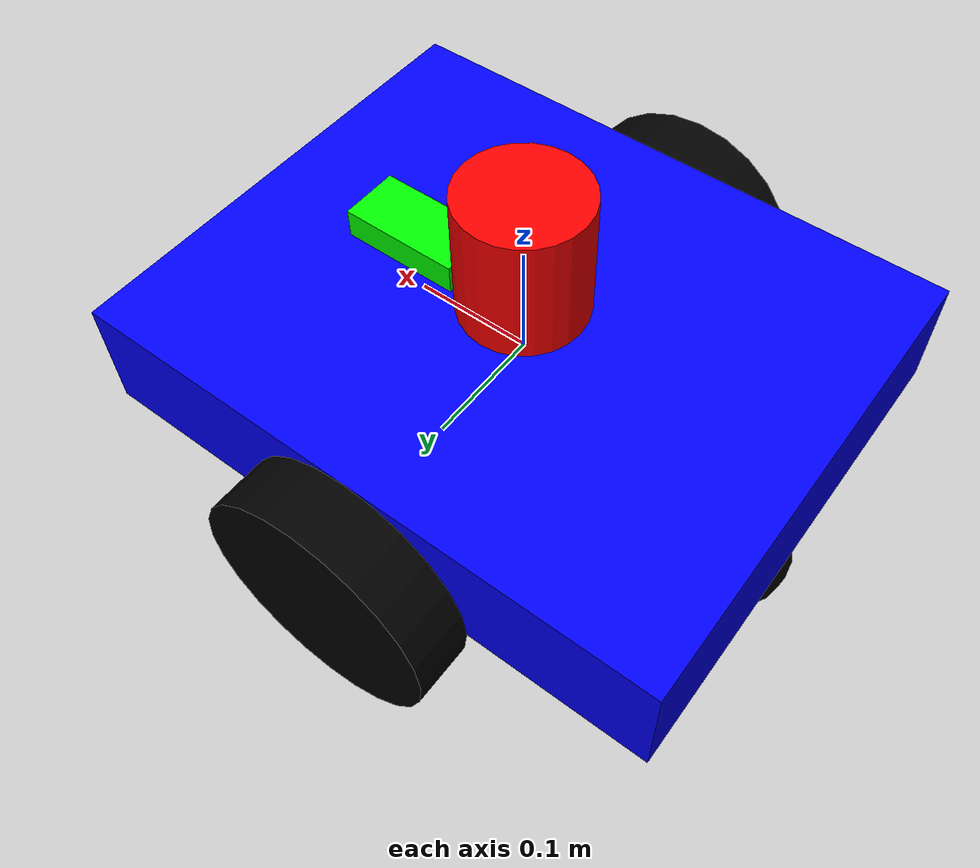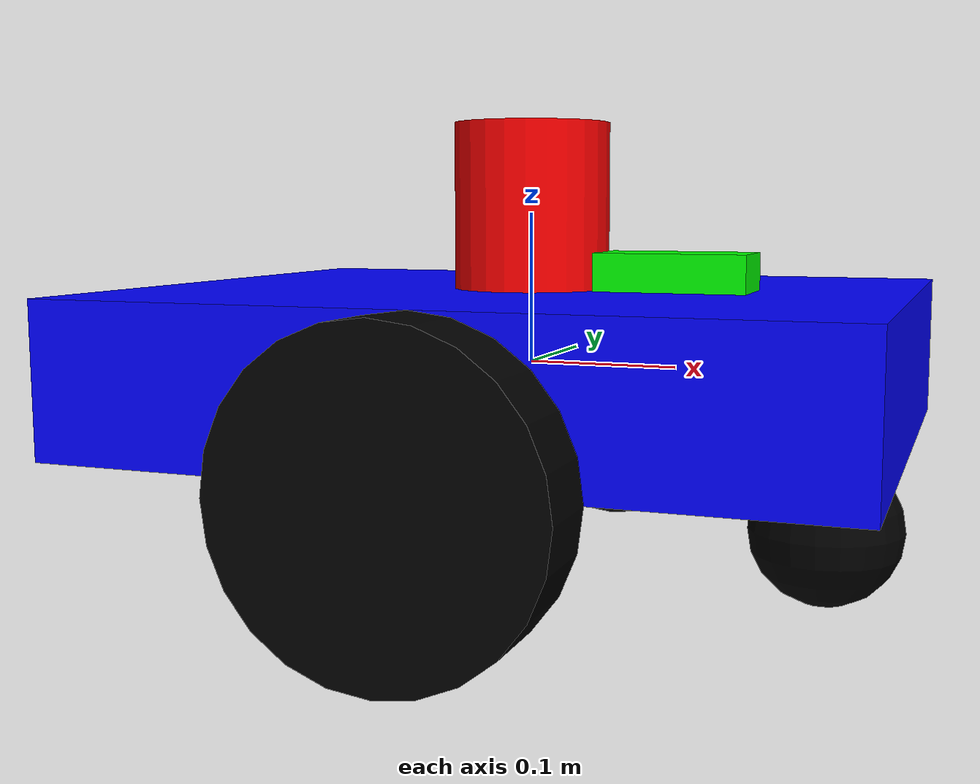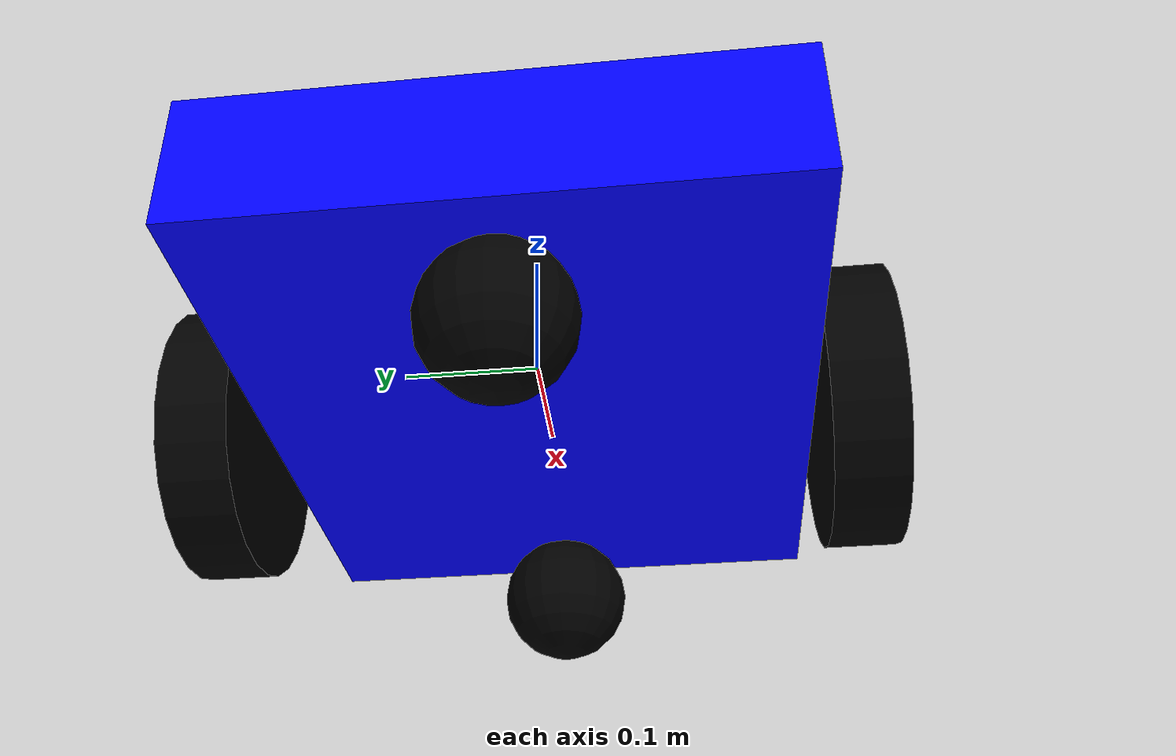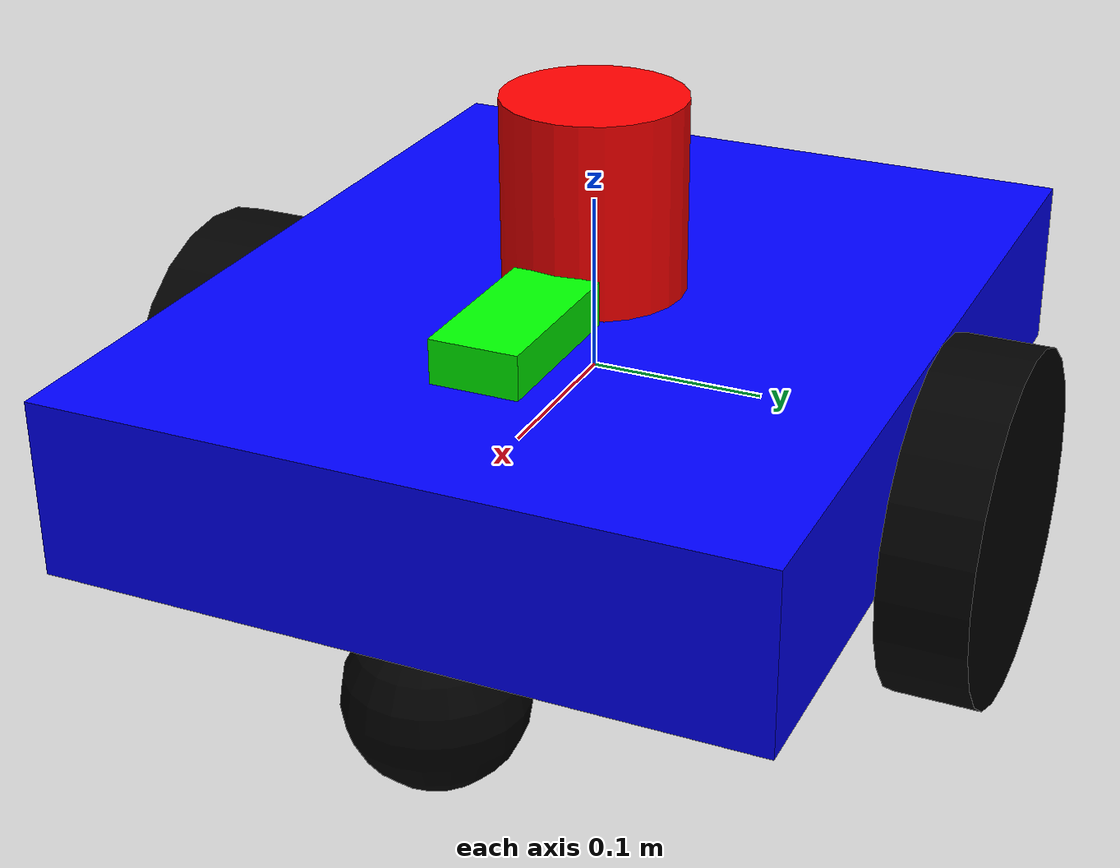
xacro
<?xml version="1.0"?>
<robot name="simple_robot" xmlns:xacro="http://www.ros.org/wiki/xacro">

  <!-- ================= PARAMETERS ================= -->
  <xacro:property name="wheel_radius" value="0.1"/>
  <xacro:property name="wheel_width" value="0.05"/>
  <xacro:property name="wheel_offset_y" value="0.225"/>

  <!-- ================= MATERIALS ================= -->
  <material name="blue">
    <color rgba="0 0 1 1"/>
  </material>

  <material name="black">
    <color rgba="0 0 0 1"/>
  </material>

  <material name="red">
    <color rgba="1 0 0 1"/>
  </material>

  <material name="green">
    <color rgba="0 1 0 1"/>
  </material>

  <!-- ================= BASE LINK ================= -->
  <link name="base_link">
    <visual>
      <geometry>
        <box size="0.5 0.4 0.1"/>
      </geometry>
      <material name="blue"/>
    </visual>

    <collision>
      <geometry>
        <box size="0.5 0.4 0.1"/>
      </geometry>
    </collision>

    <inertial>
      <mass value="5.0"/>
      <inertia ixx="0.5" iyy="0.5" izz="0.5"
              ixy="0.0" ixz="0.0" iyz="0.0"/>
    </inertial>
  </link>

  <gazebo reference="base_link">
    <material>Gazebo/Blue</material>
  </gazebo>

  <!-- ================= WHEEL MACRO ================= -->
  <xacro:macro name="wheel" params="name y_offset">

    <link name="${name}">
      <visual>
        <origin xyz="0 0 0" rpy="1.5708 0 0"/>
        <geometry>
          <cylinder radius="${wheel_radius}" length="${wheel_width}"/>
        </geometry>
        <material name="black"/>
      </visual>

      <collision>
        <origin xyz="0 0 0" rpy="1.5708 0 0"/>
        <geometry>
          <cylinder radius="${wheel_radius}" length="${wheel_width}"/>
        </geometry>
      </collision>

      <inertial>
        <mass value="1.0"/>
        <inertia ixx="0.1" iyy="0.1" izz="0.1"
                ixy="0.0" ixz="0.0" iyz="0.0"/>
      </inertial>
    </link>

    <joint name="${name}_joint" type="continuous">
      <parent link="base_link"/>
      <child link="${name}"/>
      <origin xyz="0 ${y_offset} -0.05"/>
      <axis xyz="0 1 0"/>
    </joint>

    <gazebo reference="${name}">
      <material>Gazebo/Black</material>
      <mu1>1.5</mu1>
      <mu2>1.5</mu2>
      <kp>1000000</kp>
      <kd>100</kd>
    </gazebo>

  </xacro:macro>

  <!-- ================= CREATE WHEELS ================= -->
  <xacro:wheel name="left_wheel" y_offset="${wheel_offset_y}"/>
  <xacro:wheel name="right_wheel" y_offset="-${wheel_offset_y}"/>

  <!-- ================= FRONT CASTER ================= -->
  <link name="front_caster">
    <visual>
      <geometry>
        <sphere radius="0.05"/>
      </geometry>
      <material name="black"/>
    </visual>
    <collision>
      <geometry>
        <sphere radius="0.05"/>
      </geometry>
    </collision>
    <inertial>
      <mass value="0.5"/>
      <inertia ixx="0.001" iyy="0.001" izz="0.001"
              ixy="0.0" ixz="0.0" iyz="0.0"/>
    </inertial>
  </link>

  <joint name="front_caster_joint" type="fixed">
    <parent link="base_link"/>
    <child link="front_caster"/>
    <origin xyz="0.2 0 -0.1"/>
  </joint>

  <gazebo reference="front_caster">
    <material>Gazebo/Black</material>
    <mu1>0.001</mu1>
    <mu2>0.001</mu2>
  </gazebo>

  <!-- ================= REAR CASTER ================= -->
  <link name="rear_caster">
    <visual>
      <geometry>
        <sphere radius="0.05"/>
      </geometry>
      <material name="black"/>
    </visual>
    <collision>
      <geometry>
        <sphere radius="0.05"/>
      </geometry>
    </collision>
    <inertial>
      <mass value="0.5"/>
      <inertia ixx="0.001" iyy="0.001" izz="0.001"
              ixy="0.0" ixz="0.0" iyz="0.0"/>
    </inertial>
  </link>

  <joint name="rear_caster_joint" type="fixed">
    <parent link="base_link"/>
    <child link="rear_caster"/>
    <origin xyz="-0.2 0 -0.1"/>
  </joint>

  <gazebo reference="rear_caster">
    <material>Gazebo/Black</material>
    <mu1>0.001</mu1>
    <mu2>0.001</mu2>
  </gazebo>

  <!-- ================= LIDAR ================= -->
  <link name="lidar_link">
    <visual>
      <geometry>
        <cylinder length="0.1" radius="0.05"/>
      </geometry>
      <material name="red"/>
    </visual>

    <collision>
      <geometry>
        <cylinder length="0.1" radius="0.05"/>
      </geometry>
    </collision>

    <inertial>
      <mass value="0.5"/>
      <inertia ixx="0.01" iyy="0.01" izz="0.01"
              ixy="0.0" ixz="0.0" iyz="0.0"/>
    </inertial>
  </link>

  <link name="lidar_spinner_link">
    <visual>
      <geometry>
        <cylinder length="0.12" radius="0.052"/>
      </geometry>
      <material name="red"/>
    </visual>

    <inertial>
      <mass value="0.05"/>
      <inertia ixx="0.0001" iyy="0.0001" izz="0.0001"
              ixy="0.0" ixz="0.0" iyz="0.0"/>
    </inertial>
  </link>

  <joint name="lidar_joint" type="fixed">
    <parent link="base_link"/>
    <child link="lidar_link"/>
    <origin xyz="0 0 0.10"/>
  </joint>

  <joint name="lidar_spinner_joint" type="continuous">
    <parent link="lidar_link"/>
    <child link="lidar_spinner_link"/>
    <origin xyz="0 0 0"/>
    <axis xyz="0 0 1"/>
  </joint>

  <gazebo reference="lidar_link">
    <material>Gazebo/Red</material>

    <sensor name="lidar_sensor" type="gpu_lidar">
      <always_on>true</always_on>
      <visualize>true</visualize>
      <update_rate>10</update_rate>
      <topic>scan</topic>
      <lidar>
        <scan>
          <horizontal>
            <samples>720</samples>
            <resolution>1</resolution>
            <min_angle>-3.14159</min_angle>
            <max_angle>3.14159</max_angle>
          </horizontal>
        </scan>
        <range>
          <min>0.1</min>
          <max>10.0</max>
          <resolution>0.01</resolution>
        </range>
      </lidar>
    </sensor>
  </gazebo>

  <gazebo reference="lidar_spinner_link">
    <material>Gazebo/Red</material>
  </gazebo>

  <gazebo>
    <plugin
      filename="gz-sim-joint-controller-system"
      name="gz::sim::systems::JointController">
      <joint_name>lidar_spinner_joint</joint_name>
      <initial_velocity>3.0</initial_velocity>
    </plugin>
  </gazebo>

  <!-- ================= DIFFERENTIAL DRIVE ================= -->
  <gazebo>
    <plugin
      filename="gz-sim-diff-drive-system"
      name="gz::sim::systems::DiffDrive">
      <left_joint>left_wheel_joint</left_joint>
      <right_joint>right_wheel_joint</right_joint>
      <wheel_separation>${2 * wheel_offset_y}</wheel_separation>
      <wheel_radius>${wheel_radius}</wheel_radius>
      <odom_topic>/odom</odom_topic>
      <topic>/cmd_vel</topic>
      <tf_topic>/tf</tf_topic>
      <frame_id>odom</frame_id>
      <child_frame_id>base_link</child_frame_id>
      <odom_publish_frequency>50</odom_publish_frequency>
      <max_linear_velocity>1.0</max_linear_velocity>
      <max_angular_velocity>2.0</max_angular_velocity>
      <min_linear_velocity>-1.0</min_linear_velocity>
      <min_angular_velocity>-2.0</min_angular_velocity>
      <max_linear_acceleration>1.0</max_linear_acceleration>
      <max_angular_acceleration>2.0</max_angular_acceleration>
    </plugin>
  </gazebo>

  <!-- ================= CAMERA ================= -->
  <link name="camera_link">
    <visual>
      <geometry>
        <box size="0.1 0.05 0.05"/>
      </geometry>
      <material name="green"/>
    </visual>

    <collision>
      <geometry>
        <box size="0.1 0.05 0.05"/>
      </geometry>
    </collision>

    <inertial>
      <mass value="0.3"/>
      <inertia ixx="0.01" iyy="0.01" izz="0.01"
              ixy="0.0" ixz="0.0" iyz="0.0"/>
    </inertial>
  </link>

  <joint name="camera_joint" type="fixed">
    <parent link="base_link"/>
    <child link="camera_link"/>
    <origin xyz="0.10 0 0.05"/>
  </joint>

  <gazebo reference="camera_link">
    <material>Gazebo/Green</material>

    <sensor type="camera" name="camera_sensor">
      <always_on>true</always_on>
      <update_rate>30</update_rate>
      <visualize>true</visualize>
      <topic>/camera/image_raw</topic>
      <camera>
        <camera_info_topic>/camera/camera_info</camera_info_topic>
        <horizontal_fov>1.396</horizontal_fov>
        <image>
          <width>640</width>
          <height>480</height>
          <format>R8G8B8</format>
        </image>
      </camera>
    </sensor>
  </gazebo>

  <!-- ================= CAMERA OPTICAL FRAME ================= -->
  <link name="camera_optical_frame"/>

  <joint name="camera_optical_joint" type="fixed">
    <parent link="camera_link"/>
    <child link="camera_optical_frame"/>
    <origin xyz="0 0 0" rpy="-1.5708 0 -1.5708"/>
  </joint>

</robot>
